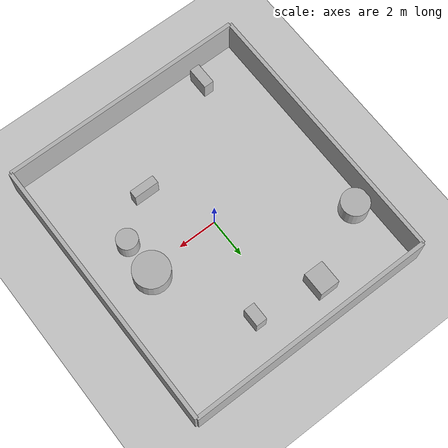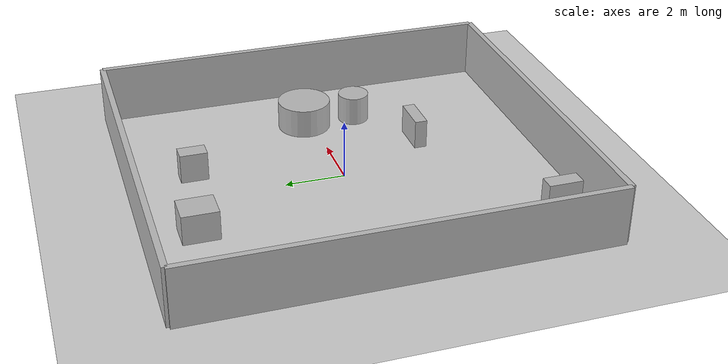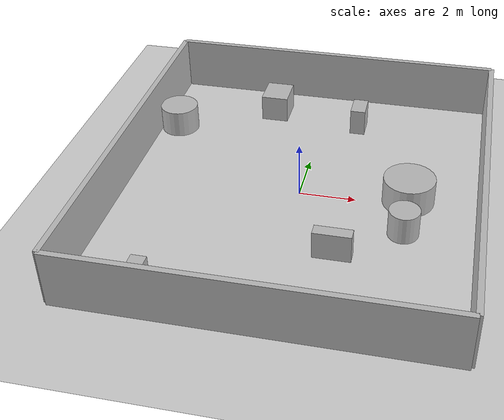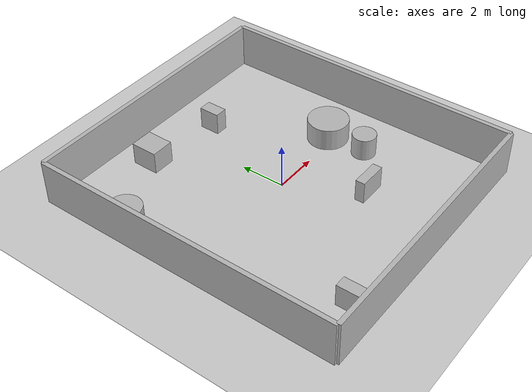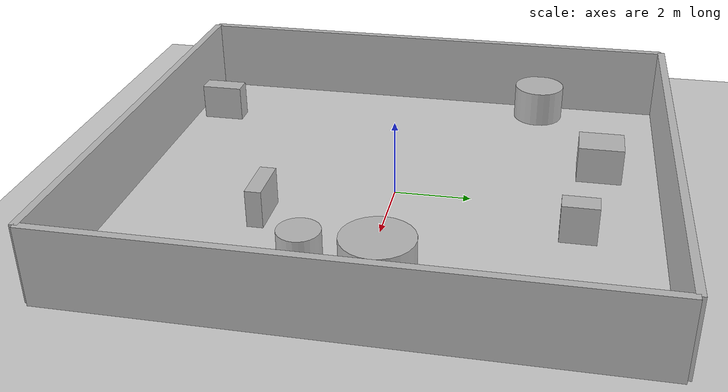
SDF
<?xml version="1.0"?>
<sdf version="1.6">
  <world name="env_76">

    <include><uri>model://ground_plane</uri></include>
    <include><uri>model://sun</uri></include>

    <!-- WALLS -->
    <model name="wall_north"><static>true</static><pose>0 6.942440922962319 1 0 0 0</pose>
      <link name="link"><collision name="collision">
        <geometry><box><size>12.579007027758346 0.2 2</size></box></geometry>
      </collision><visual name="visual">
        <geometry><box><size>12.579007027758346 0.2 2</size></box></geometry>
      </visual></link>
    </model>

    <model name="wall_south"><static>true</static><pose>0 -6.942440922962319 1 0 0 0</pose>
      <link name="link"><collision name="collision">
        <geometry><box><size>12.579007027758346 0.2 2</size></box></geometry>
      </collision><visual name="visual">
        <geometry><box><size>12.579007027758346 0.2 2</size></box></geometry>
      </visual></link>
    </model>

    <model name="wall_east"><static>true</static><pose>6.289503513879173 0 1 0 0 1.57</pose>
      <link name="link"><collision name="collision">
        <geometry><box><size>13.884881845924639 0.2 2</size></box></geometry>
      </collision><visual name="visual">
        <geometry><box><size>13.884881845924639 0.2 2</size></box></geometry>
      </visual></link>
    </model>

    <model name="wall_west"><static>true</static><pose>-6.289503513879173 0 1 0 0 1.57</pose>
      <link name="link"><collision name="collision">
        <geometry><box><size>13.884881845924639 0.2 2</size></box></geometry>
      </collision><visual name="visual">
        <geometry><box><size>13.884881845924639 0.2 2</size></box></geometry>
      </visual></link>
    </model>

    <!-- SENSOR -->

    <model name="lidar_sensor">
      <static>true</static>
      <pose>-4.736386738363769 1.2907956805027814 0.4 0 0 0</pose>
      <link name="link">
        <sensor name="lidar" type="ray">
          <pose>0 0 0 0 0 0</pose>
          <visualize>true</visualize>
          <always_on>true</always_on>
          <update_rate>10</update_rate>
          <ray>
            <scan><horizontal>
              <samples>180</samples>
              <resolution>1</resolution>
              <min_angle>-3.14159</min_angle>
              <max_angle>3.14159</max_angle>
            </horizontal></scan>
            <range><min>0.15</min><max>20.0</max><resolution>0.01</resolution></range>
          </ray>
          <plugin name="lidar_plugin" filename="liblidar_plugin.so"/>
        </sensor>
      </link>
    </model>

    <!-- OBSTACLES -->

    <model name="obstacle_0">
      <static>true</static>
      <pose>1.4068631583376963 4.775924809678964 0.5 0 0 0</pose>
      <link name="link">
        <collision name="collision">
          <geometry><box><size>0.56 0.92 1.0</size></box></geometry>
        </collision>
        <visual name="visual">
          <geometry><box><size>0.56 0.92 1.0</size></box></geometry>
        </visual>
      </link>
    </model>

    <model name="obstacle_1">
      <static>true</static>
      <pose>3.8279737358752195 -1.516928630815988 0.5 0 0 0</pose>
      <link name="link">
        <collision name="collision">
          <geometry><cylinder><radius>0.53</radius><length>1.0</length></cylinder></geometry>
        </collision>
        <visual name="visual">
          <geometry><cylinder><radius>0.53</radius><length>1.0</length></cylinder></geometry>
        </visual>
      </link>
    </model>

    <model name="obstacle_2">
      <static>true</static>
      <pose>-3.8524389645546817 -5.985263012127809 0.5 0 0 0</pose>
      <link name="link">
        <collision name="collision">
          <geometry><box><size>0.52 1.15 1.0</size></box></geometry>
        </collision>
        <visual name="visual">
          <geometry><box><size>0.52 1.15 1.0</size></box></geometry>
        </visual>
      </link>
    </model>

    <model name="obstacle_3">
      <static>true</static>
      <pose>3.810841884795283 0.311445916709868 0.5 0 0 0</pose>
      <link name="link">
        <collision name="collision">
          <geometry><cylinder><radius>0.91</radius><length>1.0</length></cylinder></geometry>
        </collision>
        <visual name="visual">
          <geometry><cylinder><radius>0.91</radius><length>1.0</length></cylinder></geometry>
        </visual>
      </link>
    </model>

    <model name="obstacle_4">
      <static>true</static>
      <pose>1.7176883018052438 -3.0817932936772596 0.5 0 0 0</pose>
      <link name="link">
        <collision name="collision">
          <geometry><box><size>1.29 0.42 1.0</size></box></geometry>
        </collision>
        <visual name="visual">
          <geometry><box><size>1.29 0.42 1.0</size></box></geometry>
        </visual>
      </link>
    </model>

    <model name="obstacle_5">
      <static>true</static>
      <pose>-5.509915785837446 3.4375467031785316 0.5 0 0 0</pose>
      <link name="link">
        <collision name="collision">
          <geometry><cylinder><radius>0.71</radius><length>1.0</length></cylinder></geometry>
        </collision>
        <visual name="visual">
          <geometry><cylinder><radius>0.71</radius><length>1.0</length></cylinder></geometry>
        </visual>
      </link>
    </model>

    <model name="obstacle_6">
      <static>true</static>
      <pose>-1.9762146136609826 5.274091874217207 0.5 0 0 0</pose>
      <link name="link">
        <collision name="collision">
          <geometry><box><size>1.02 1.2 1.0</size></box></geometry>
        </collision>
        <visual name="visual">
          <geometry><box><size>1.02 1.2 1.0</size></box></geometry>
        </visual>
      </link>
    </model>

  </world>
</sdf>
